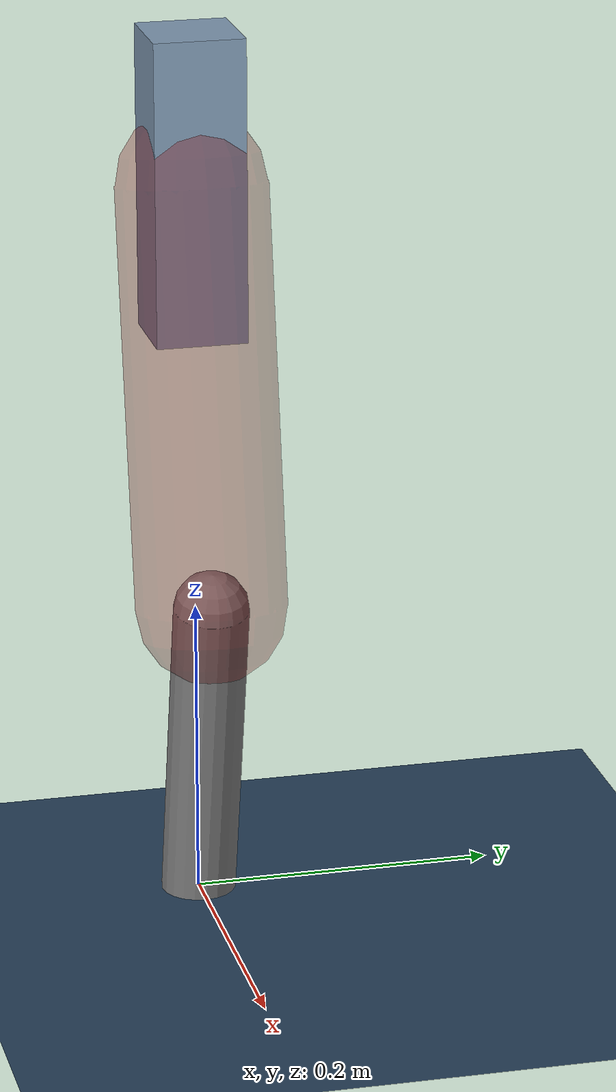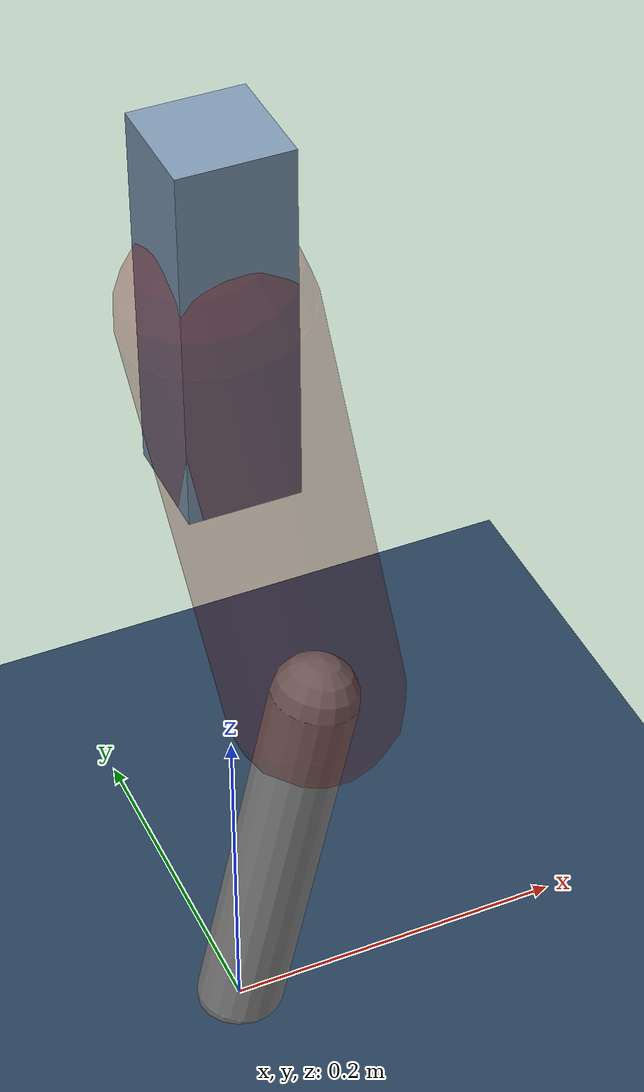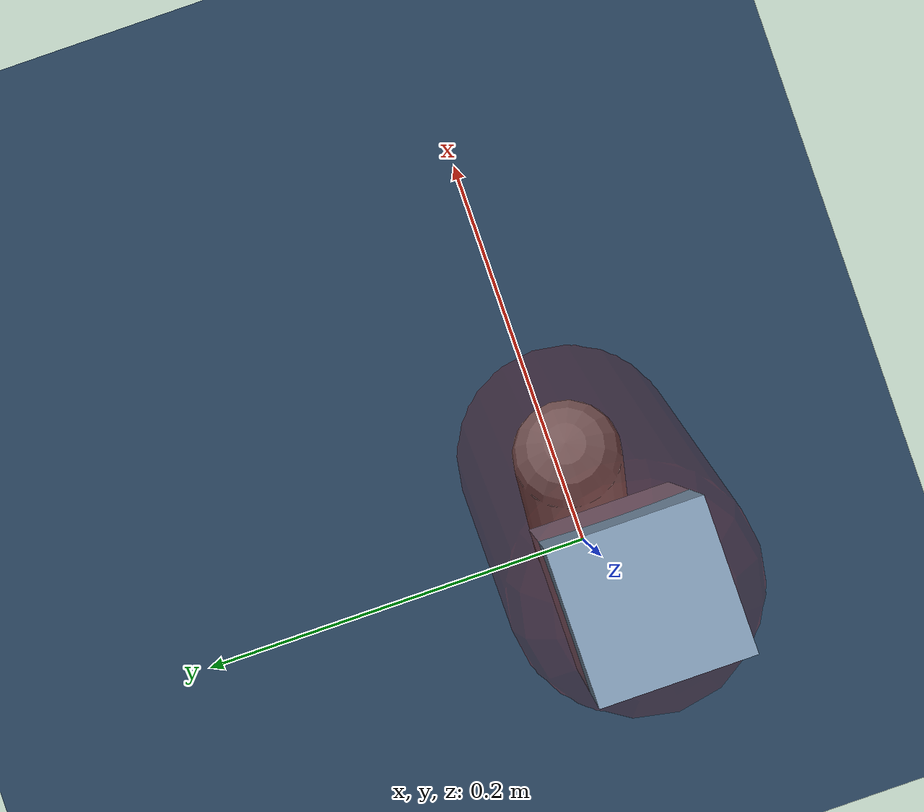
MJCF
<mujoco model="Hopper2D">
	<compiler inertiafromgeom="true" angle="radian" />
	<option timestep="0.001" integrator="implicit" cone="elliptic" solver="Newton" tolerance="1e-10" />

	<default>
		<geom contype="1" conaffinity="1" condim="3" friction="2 0.005 0.0001" solref="0.005 1" />
		<joint limited="true" damping="0.1" />
	</default>

	<asset>
		<texture name="skybox" type="skybox" builtin="gradient" rgb1=".4 .6 .8" rgb2="0 0 0" width="800" height="800" />
		<texture name="grid" type="2d" builtin="checker" rgb1=".1 .2 .3" rgb2=".2 .3 .4" width="300" height="300" mark="edge" markrgb=".2 .3 .4" />
		<material name="ground" texture="grid" texrepeat="1 1" texuniform="true" reflectance="0.1" />
		<material name="leg" rgba="0.5 0.6 0.7 1" />
	</asset>

	<worldbody>

		<geom name="floor" type="plane" size="5 5 0.25" material="ground" />

		<light directional="false" diffuse="0.8 0.8 0.8" specular="0.3 0.3 0.3" pos="0 0 2" dir="0 0 -1" />
		<light mode="targetbodycom" target="base" directional="false" diffuse="0.8 0.8 0.8" specular="0.3 0.3 0.3" pos="0 0 2" dir="0 0 -1" />

		<camera name="fixed" pos="0 -2 1" xyaxes="1 0 0 0 0 1" />
		<camera name="tracking" mode="trackcom" pos="0 -3 1" />

		<body name="root" pos="0 0 0.48880109768316093">
			<joint name="slide_x" type="slide" axis="1 0 0" range="-100 100" />
			<joint name="slide_z" type="slide" axis="0 0 1" range="0 10" />

			<body name="base" pos="0 0 0">
				<geom name="torso" type="box" size="0.03 0.03 0.1" mass="3.739" material="leg" />

				<body name="link1" pos="0 0 0" euler="0 1.3911805112757911 0">
					<joint type="hinge" axis="0 -1 0" pos="0 0 0" name="hinge1" limited="true" range="-3.14 3.14" stiffness="0" damping="0.1" />
					<geom name="thigh" type="capsule" fromto="0 0 0 0.2764280969433211 0 0" size="0.05" rgba="0.5 0 0 0.3" mass="0.9256558617469669" />

					<body name="link2" pos="0.2764280969433211 0 0" euler="0 0.4035617540622987 0">
						<joint type="hinge" axis="0 -1 0" pos="0 0 0" name="hinge2" limited="true" range="-3.14 3.14" stiffness="0" damping="0.1" />
						<geom name="shank" type="capsule" fromto="0 0 0 0.22237300073983984 0 0" size="0.025" mass="0.41963570066585587" />

					</body>
				</body>
			</body>
		</body>
	</worldbody>

	<actuator>
		<motor name="torque1" joint="hinge1" ctrlrange="-124.71623175382199 124.71623175382199" ctrllimited="true" gear="1" />
		<motor name="torque2" joint="hinge2" ctrlrange="-176.7227031449829 176.7227031449829" ctrllimited="true" gear="1" />
	</actuator>
</mujoco>
